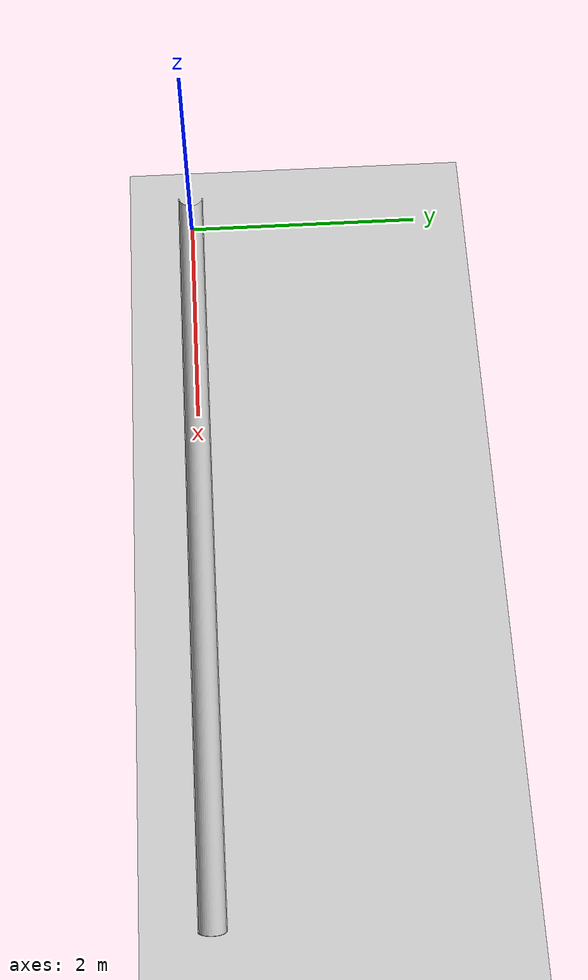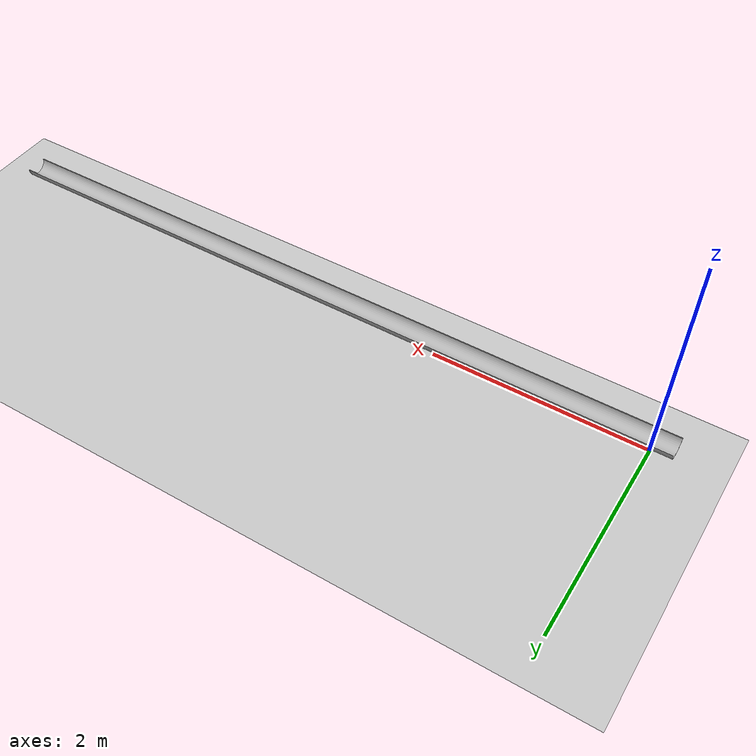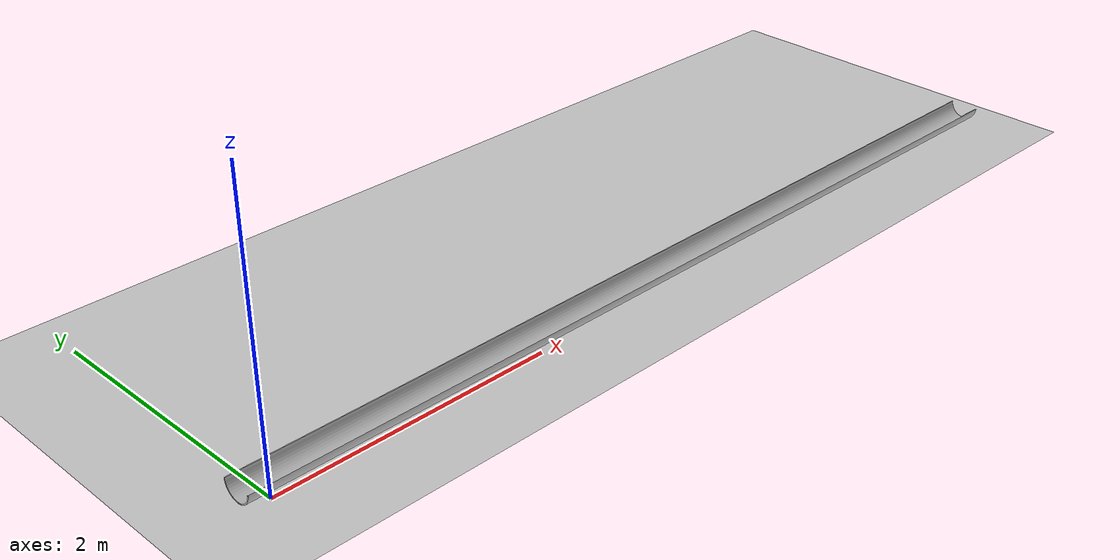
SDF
<sdf version="1.7">
  <world name="default">
      <!-- Add the Sun light to the world -->
    <light name='sun' type='directional'>
      <cast_shadows>1</cast_shadows>
      <pose>0 0 10 0 -0 0</pose>
      <diffuse>0.8 0.8 0.8 1</diffuse>
      <specular>0.2 0.2 0.2 1</specular>
      <attenuation>
        <range>1000</range>
        <constant>0.9</constant>
        <linear>0.01</linear>
        <quadratic>0.001</quadratic>
      </attenuation>
      <direction>-0.5 0.1 -0.9</direction>
      <spot>
        <inner_angle>0</inner_angle>
        <outer_angle>0</outer_angle>
        <falloff>0</falloff>
      </spot>
    </light>

    <!-- World settings (optional) -->
    <gravity>0 0 -9.81</gravity> <!-- Default gravity -->
    <scene>
      <ambient_light>0.7 0.7 0.7 1.0</ambient_light>
    </scene>

    <!-- Add the hollow pipe model -->
    <model name="half_hollow_pipe">
      <static>true</static>  <!-- Pipe is static, it's not going to move -->
      <pose>-0.2 -0.1084 0.08 1.5708 0 1.5708</pose>
      <link name="hollow_pipe_link">
        <visual name="hollow_pipe_visual">
          <geometry>
            <mesh>
              <!-- Path to the hollow pipe mesh -->
              <uri>model://pipe_swarm/models/hollow_pipe/meshes/half_hollow_pipe.stl</uri>
              <scale>0.001354667 0.001354667 0.001354667</scale>  <!-- Scale if needed -->
            </mesh>
          </geometry>
        </visual>

        <collision name="hollow_pipe_collision">
          <geometry>
            <mesh>
              <!-- Path to the hollow pipe mesh for collision -->
              <uri>model://pipe_swarm/models/hollow_pipe/meshes/half_hollow_pipe.stl</uri>
              <scale>0.001354667 0.001354667 0.001354667</scale>  <!-- Scale for collision geometry -->
            </mesh>
          </geometry>
        </collision>
      </link>
    </model>

    <!-- Ground plane (optional) -->
    <model name="ground_plane">
      <static>true</static>
      <link name="ground_plane_link">
        <visual name="ground_plane_visual">
          <geometry>
            <plane>
              <normal>0 0 1</normal>
              <size>10 10</size>
            </plane>
          </geometry>
        </visual>
        <collision name="ground_plane_collision">
          <geometry>
            <plane>
              <normal>0 0 1</normal>
              <size>10 10</size>
            </plane>
          </geometry>
        </collision>
      </link>
    </model>

  </world>
</sdf>
